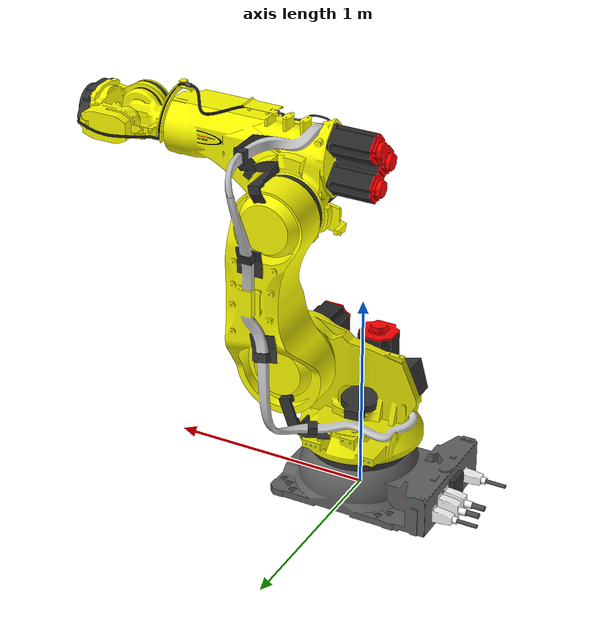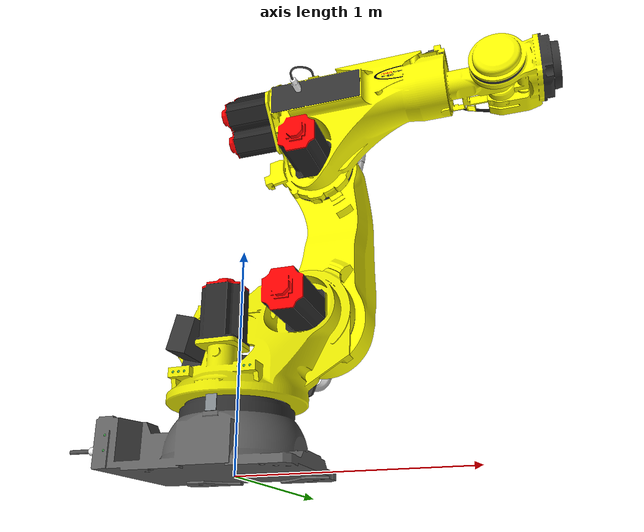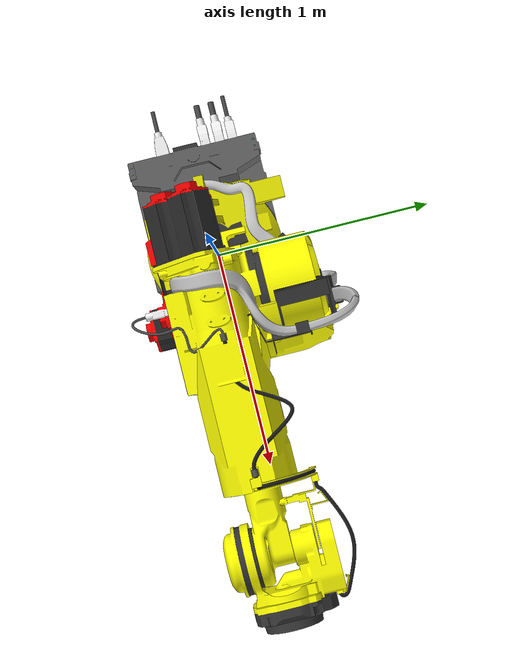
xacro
<?xml version="1.0" ?>
<robot name="m810_190_20b" xmlns:xacro="http://wiki.ros.org/xacro">
  <xacro:include
    filename="$(find fanuc_m810_description)/urdf/m810_190_20b_urdf_macro.xacro"
  />

  <link name="world" />
  <link name="ee_link" />
  <xacro:m810_190_20b parent="world" child="ee_link">
    <origin xyz="0 0 0" rpy="0 0 0" />
  </xacro:m810_190_20b>
</robot>

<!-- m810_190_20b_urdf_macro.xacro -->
<!--
SPDX-FileCopyrightText: 2026, FANUC America Corporation
SPDX-FileCopyrightText: 2026, FANUC CORPORATION
SPDX-License-Identifier: Apache-2.0
-->
<!-- URDF for M-810/190-20B -->
<robot xmlns:xacro="http://wiki.ros.org/xacro">
  <xacro:macro
    name="m810_190_20b"
    params="prefix=''
            parent
            *origin
            child"
  >

    <xacro:property name="j1_lower_limit" value="${radians(-165)}" />
    <xacro:property name="j2_lower_limit" value="${radians(-75)}" />
    <xacro:property name="j3_lower_limit" value="${radians(-77)}" />
    <xacro:property name="j4_lower_limit" value="${radians(-153)}" />
    <xacro:property name="j5_lower_limit" value="${radians(-120)}" />
    <xacro:property name="j6_lower_limit" value="${radians(-360)}" />

    <xacro:property name="j1_upper_limit" value="${radians(165)}" />
    <xacro:property name="j2_upper_limit" value="${radians(96)}" />
    <xacro:property name="j3_upper_limit" value="${radians(90)}" />
    <xacro:property name="j4_upper_limit" value="${radians(153)}" />
    <xacro:property name="j5_upper_limit" value="${radians(120)}" />
    <xacro:property name="j6_upper_limit" value="${radians(360)}" />

    <xacro:property name="j1_effort_limit" value="30000" />
    <xacro:property name="j2_effort_limit" value="30000" />
    <xacro:property name="j3_effort_limit" value="30000" />
    <xacro:property name="j4_effort_limit" value="6000" />
    <xacro:property name="j5_effort_limit" value="6000" />
    <xacro:property name="j6_effort_limit" value="3000" />

    <xacro:property name="j1_velocity_limit" value="${radians(100)}" />
    <xacro:property name="j2_velocity_limit" value="${radians(80)}" />
    <xacro:property name="j3_velocity_limit" value="${radians(80)}" />
    <xacro:property name="j4_velocity_limit" value="${radians(120)}" />
    <xacro:property name="j5_velocity_limit" value="${radians(115)}" />
    <xacro:property name="j6_velocity_limit" value="${radians(200)}" />

    <!-- links -->
    <link name="${prefix}base_link">
      <visual>
        <origin xyz="0 0 0" rpy="0 0 0" />
        <geometry>
          <mesh
            filename="package://fanuc_m810_description/meshes/m810_190_20b/visual/base.dae"
          />
        </geometry>
      </visual>
      <collision>
        <origin xyz="0 0 0" rpy="0 0 0" />
        <geometry>
          <mesh
            filename="package://fanuc_m810_description/meshes/m810_190_20b/collision/base.stl"
          />
        </geometry>
      </collision>
      <inertial>
        <mass value=" 260" />
        <origin xyz="-.127 -.00127  .142" />
        <inertia
          ixx=" 8.88"
          ixy=" .17"
          ixz="-.31"
          iyy=" 17.9"
          iyz=" .0437"
          izz=" 22.7"
        />
      </inertial>
    </link>

    <link name="${prefix}J1_link">
      <visual>
        <origin xyz="0 0 0" rpy="0 0 0" />
        <geometry>
          <mesh
            filename="package://fanuc_m810_description/meshes/m810_190_20b/visual/j1.dae"
          />
        </geometry>
      </visual>
      <collision>
        <origin xyz="0 0 0" rpy="0 0 0" />
        <geometry>
          <mesh
            filename="package://fanuc_m810_description/meshes/m810_190_20b/collision/j1.stl"
          />
        </geometry>
      </collision>
      <inertial>
        <mass value=" 355" />
        <origin xyz=" .0978  .000514 -.135" />
        <inertia
          ixx=" 17.4"
          ixy=" .243"
          ixz="-3.33"
          iyy=" 21.4"
          iyz=" .489"
          izz=" 22.8"
        />
      </inertial>
    </link>

    <link name="${prefix}J2_link">
      <visual>
        <origin xyz="0 0 0" rpy="0 0 0" />
        <geometry>
          <mesh
            filename="package://fanuc_m810_description/meshes/m810_190_20b/visual/j2.dae"
          />
        </geometry>
      </visual>
      <collision>
        <origin xyz="0 0 0" rpy="0 0 0" />
        <geometry>
          <mesh
            filename="package://fanuc_m810_description/meshes/m810_190_20b/collision/j2.stl"
          />
        </geometry>
      </collision>
      <inertial>
        <mass value=" 268" />
        <origin xyz=" .00749  .265  .34" />
        <inertia
          ixx=" 29.9"
          ixy=" .0292"
          ixz="-.908"
          iyy=" 30.1"
          iyz="-1.74"
          izz=" 6"
        />
      </inertial>
    </link>

    <link name="${prefix}J3_link">
      <visual>
        <origin xyz="0 0 0" rpy="0 0 0" />
        <geometry>
          <mesh
            filename="package://fanuc_m810_description/meshes/m810_190_20b/visual/j3.dae"
          />
        </geometry>
      </visual>
      <collision>
        <origin xyz="0 0 0" rpy="0 0 0" />
        <geometry>
          <mesh
            filename="package://fanuc_m810_description/meshes/m810_190_20b/collision/j3.stl"
          />
        </geometry>
      </collision>
      <inertial>
        <mass value=" 381" />
        <origin xyz=" .111  .0624  .149" />
        <inertia
          ixx=" 16.1"
          ixy=" .049"
          ixz="-1.83"
          iyy=" 29.5"
          iyz=" 1.32"
          izz=" 31.7"
        />
      </inertial>
    </link>

    <link name="${prefix}J4_link">
      <visual>
        <origin xyz="0 0 0" rpy="0 0 0" />
        <geometry>
          <mesh
            filename="package://fanuc_m810_description/meshes/m810_190_20b/visual/j4.dae"
          />
        </geometry>
      </visual>
      <collision>
        <origin xyz="0 0 0" rpy="0 0 0" />
        <geometry>
          <mesh
            filename="package://fanuc_m810_description/meshes/m810_190_20b/collision/j4.stl"
          />
        </geometry>
      </collision>
      <inertial>
        <mass value=" 51.5" />
        <origin xyz=" .707  .0489  .0444" />
        <inertia
          ixx=" .606"
          ixy=" .0587"
          ixz=" .236"
          iyy=" 1.22"
          iyz="-.0373"
          izz=" 1.27"
        />
      </inertial>
    </link>

    <link name="${prefix}J5_link">
      <visual>
        <origin xyz="0 0 0" rpy="0 0 0" />
        <geometry>
          <mesh
            filename="package://fanuc_m810_description/meshes/m810_190_20b/visual/j5.dae"
          />
        </geometry>
      </visual>
      <collision>
        <origin xyz="0 0 0" rpy="0 0 0" />
        <geometry>
          <mesh
            filename="package://fanuc_m810_description/meshes/m810_190_20b/collision/j5.stl"
          />
        </geometry>
      </collision>
      <inertial>
        <mass value=" 41.9" />
        <origin xyz=" .0656  .0126  .0000000911" />
        <inertia
          ixx=" .603"
          ixy="-.044"
          ixz="-.000000607"
          iyy=" .475"
          iyz=" .00000104"
          izz=" .778"
        />
      </inertial>
    </link>

    <link name="${prefix}J6_link">
      <visual>
        <origin xyz="0 0 0" rpy="0 0 0" />
        <geometry>
          <mesh
            filename="package://fanuc_m810_description/meshes/m810_190_20b/visual/j6.dae"
          />
        </geometry>
      </visual>
      <collision>
        <origin xyz="0 0 0" rpy="0 0 0" />
        <geometry>
          <mesh
            filename="package://fanuc_m810_description/meshes/m810_190_20b/collision/j6.stl"
          />
        </geometry>
      </collision>
      <inertial>
        <mass value=" 3.08" />
        <origin xyz=" .231 -.00000142 -.00000316" />
        <inertia
          ixx=" .018"
          ixy=" .0000000237"
          ixz="-.00000000929"
          iyy=" .00958"
          iyz=" .0000000000139"
          izz=" .00958"
        />
      </inertial>
    </link>

    <!-- joints -->
    <joint name="${prefix}J1" type="revolute">
      <origin xyz=" 0  0  .67" rpy="0 0 0" />
      <parent link="${prefix}base_link" />
      <child link="${prefix}J1_link" />
      <axis xyz=" 0  0  1" />
      <limit
        lower="${j1_lower_limit}"
        upper="${j1_upper_limit}"
        effort="${j1_effort_limit}"
        velocity="${j1_velocity_limit}"
      />
    </joint>

    <joint name="${prefix}J2" type="revolute">
      <origin xyz=" .312  0  0" rpy="0 0 0" />
      <parent link="${prefix}J1_link" />
      <child link="${prefix}J2_link" />
      <axis xyz=" 0  1  0" />
      <limit
        lower="${j2_lower_limit}"
        upper="${j2_upper_limit}"
        effort="${j2_effort_limit}"
        velocity="${j2_velocity_limit}"
      />
    </joint>

    <joint name="${prefix}J3" type="revolute">
      <origin xyz=" 0  0  .8" rpy="0 0 0" />
      <parent link="${prefix}J2_link" />
      <child link="${prefix}J3_link" />
      <axis xyz=" 0 -1  0" />
      <limit
        lower="${j3_lower_limit}"
        upper="${j3_upper_limit}"
        effort="${j3_effort_limit}"
        velocity="${j3_velocity_limit}"
      />
    </joint>

    <joint name="${prefix}J4" type="revolute">
      <origin xyz=" 0  0  .225" rpy="0 0 0" />
      <parent link="${prefix}J3_link" />
      <child link="${prefix}J4_link" />
      <axis xyz="-1  0  0" />
      <limit
        lower="${j4_lower_limit}"
        upper="${j4_upper_limit}"
        effort="${j4_effort_limit}"
        velocity="${j4_velocity_limit}"
      />
    </joint>

    <joint name="${prefix}J5" type="revolute">
      <origin xyz=" .9  0  0" rpy="0 0 0" />
      <parent link="${prefix}J4_link" />
      <child link="${prefix}J5_link" />
      <axis xyz=" 0 -1  0" />
      <limit
        lower="${j5_lower_limit}"
        upper="${j5_upper_limit}"
        effort="${j5_effort_limit}"
        velocity="${j5_velocity_limit}"
      />
    </joint>

    <joint name="${prefix}J6" type="revolute">
      <origin xyz=" 0  0  0" rpy="0 0 0" />
      <parent link="${prefix}J5_link" />
      <child link="${prefix}J6_link" />
      <axis xyz="-1  0  0" />
      <limit
        lower="${j6_lower_limit}"
        upper="${j6_upper_limit}"
        effort="${j6_effort_limit}"
        velocity="${j6_velocity_limit}"
      />
    </joint>

    <!-- world coords -->
    <link name="${prefix}wbase" />
    <joint name="${prefix}base_link-wbase" type="fixed">
      <origin xyz=" 0  0  .67" rpy="0 0 0" />
      <parent link="${prefix}base_link" />
      <child link="${prefix}wbase" />
    </joint>

    <!-- flange coords -->
    <link name="${prefix}flange" />
    <joint name="${prefix}J6-flange" type="fixed">
      <origin xyz=" .24  0  0" rpy="0 0 0" />
      <parent link="${prefix}J6_link" />
      <child link="${prefix}flange" />
    </joint>

    <!-- FANUC flange coords -->
    <link name="${prefix}fanuc_flange" />
    <joint name="${prefix}flange-fanuc_flange" type="fixed">
      <origin xyz="0 0 0" rpy="${radians( 180)} ${radians(-90)} ${radians( 0)}" />
      <parent link="${prefix}flange" />
      <child link="${prefix}fanuc_flange" />
    </joint>

    <!-- Attach to parent -->
    <joint name="${prefix}base_joint" type="fixed">
      <xacro:insert_block name="origin" />
      <parent link="${parent}" />
      <child link="${prefix}base_link" />
    </joint>

    <!-- Attach child -->
    <joint name="${prefix}child_joint" type="fixed">
      <origin xyz="0 0 0" rpy="0 0 0" />
      <parent link="${prefix}flange" />
      <child link="${child}" />
    </joint>
  </xacro:macro>
</robot>
